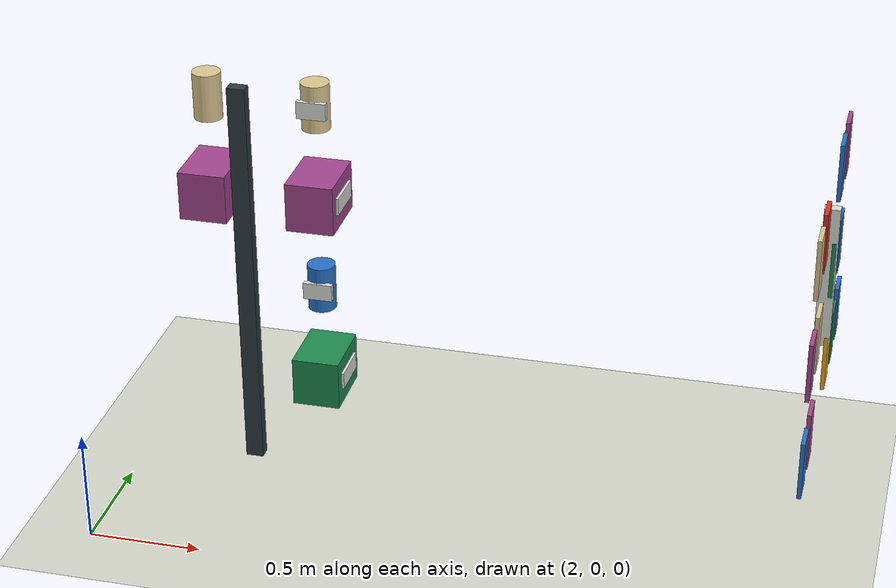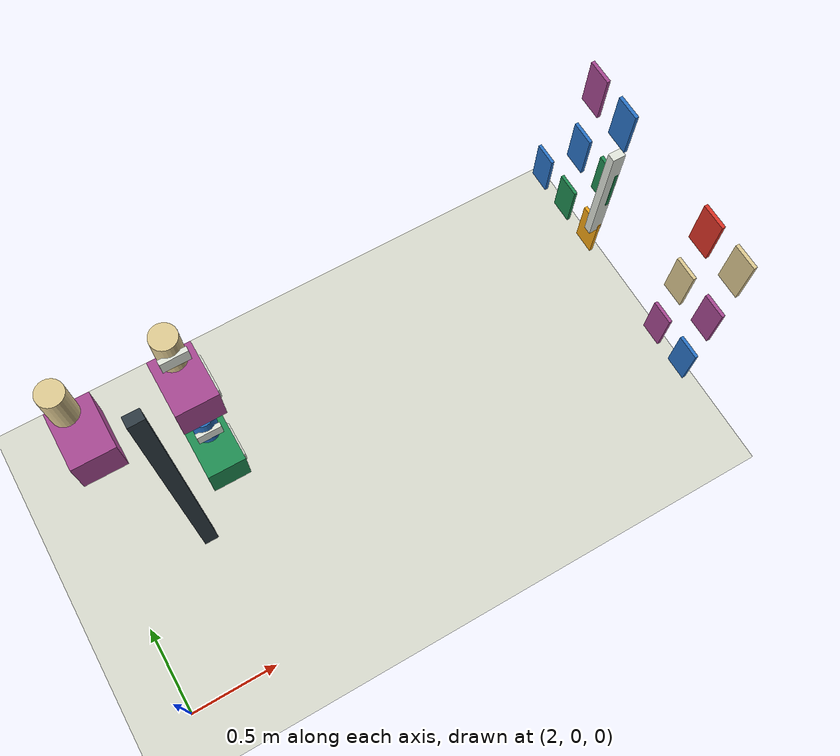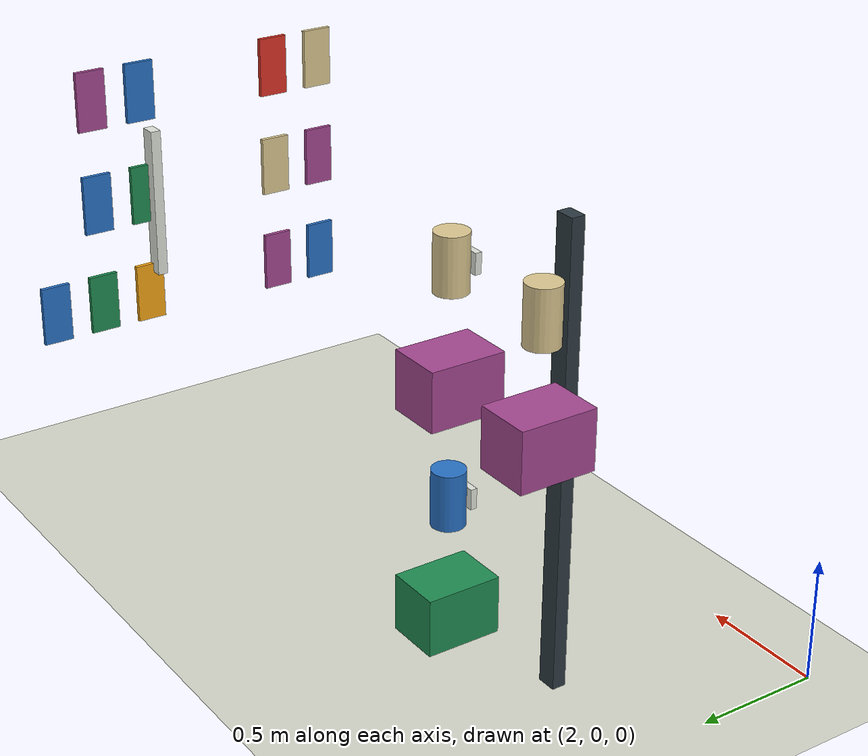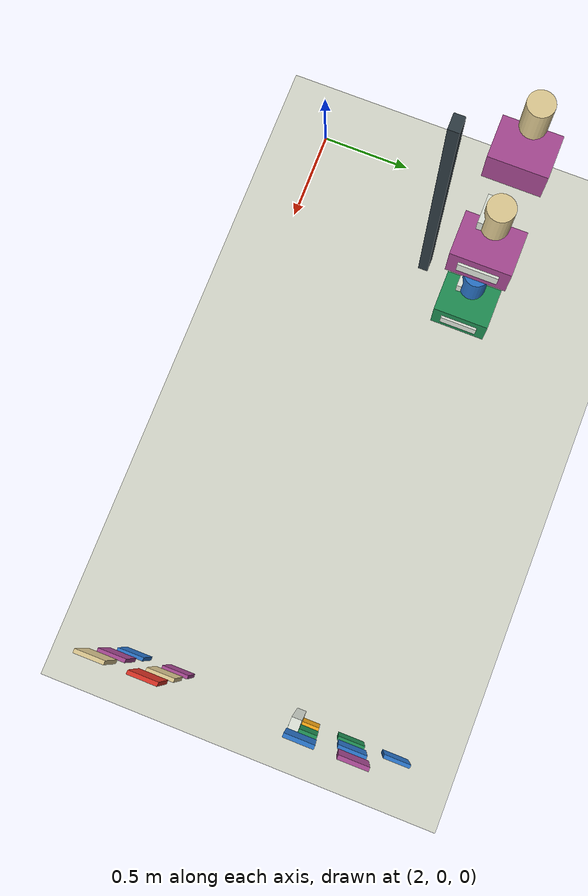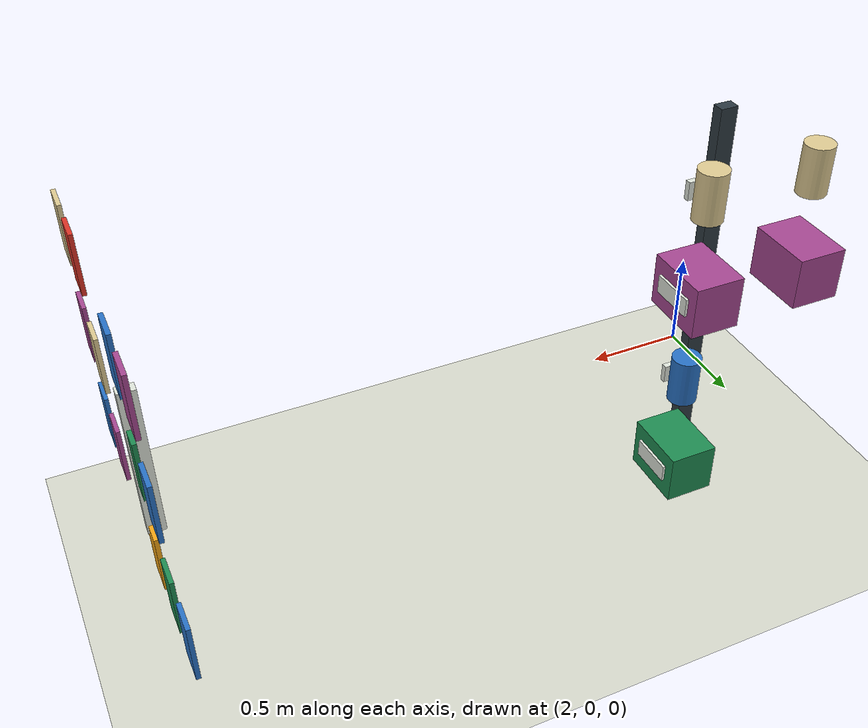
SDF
<sdf version="1.6">
 <world name="convenience_store">
  <model name="ground_plane">
   <static>true</static>
   <link name="ground_link">
    <collision name="ground_collision">
     <geometry><plane><normal>0 0 1</normal><size>100 100</size></plane></geometry>
     <surface><friction><ode><mu>1.0</mu><mu2>1.0</mu2></ode></friction></surface>
    </collision>
    <visual name="ground_visual">
     <geometry><plane><normal>0 0 1</normal><size>100 100</size></plane></geometry>
     <material><ambient>.84 .85 .80 1</ambient><diffuse>.84 .85 .80 1</diffuse></material>
    </visual>
   </link>
  </model>
  <model name="gondola_2_end_0">
   <static>true</static>
   <pose>2.5 0.7999999999999998 0.925 0 0 0</pose>
   <link name="body">
    <collision name="body_collision">
     <geometry><box><size>0.08 0.055 1.85</size></box></geometry>
     <surface><friction><ode><mu>.8</mu><mu2>.8</mu2></ode></friction></surface>
    </collision>
    <visual name="body_visual">
     <geometry><box><size>0.08 0.055 1.85</size></box></geometry>
     <material><ambient>.18 .23 .26 1</ambient><diffuse>.18 .23 .26 1</diffuse></material>
    </visual>
   </link>
  </model>
  <model name="gondola_2_goods_0_1_0">
   <static>true</static>
   <pose>2.75 1.0999999999999999 0.315 0 0 0</pose>
   <link name="body">
    <collision name="body_collision">
     <geometry><box><size>0.22 0.3 0.23</size></box></geometry>
     <surface><friction><ode><mu>.8</mu><mu2>.8</mu2></ode></friction></surface>
    </collision>
    <visual name="body_visual">
     <geometry><box><size>0.22 0.3 0.23</size></box></geometry>
     <material><ambient>.12 .55 .32 1</ambient><diffuse>.12 .55 .32 1</diffuse></material>
    </visual>
   </link>
  </model>
  <model name="gondola_2_goods_0_1_0_label">
   <static>true</static>
   <pose>2.866 1.0999999999999999 0.32 0 0 0</pose>
   <link name="body">
    <visual name="body_visual">
     <geometry><box><size>0.012 0.2 0.08</size></box></geometry>
     <material><ambient>.88 .90 .86 1</ambient><diffuse>.88 .90 .86 1</diffuse></material>
    </visual>
   </link>
  </model>
  <model name="gondola_2_goods_1_1_0">
   <static>true</static>
   <pose>2.75 1.0999999999999999 0.76 0 0 0</pose>
   <link name="body">
    <collision name="body_collision">
     <geometry><cylinder><length>0.22</length><radius>0.065</radius></cylinder></geometry>
     <surface><friction><ode><mu>.8</mu><mu2>.8</mu2></ode></friction></surface>
    </collision>
    <visual name="body_visual">
     <geometry><cylinder><length>0.22</length><radius>0.065</radius></cylinder></geometry>
     <material><ambient>.16 .45 .78 1</ambient><diffuse>.16 .45 .78 1</diffuse></material>
    </visual>
   </link>
  </model>
  <model name="gondola_2_goods_1_1_0_label">
   <static>true</static>
   <pose>2.75 1.0379999999999998 0.76 0 0 0</pose>
   <link name="body">
    <visual name="body_visual">
     <geometry><box><size>0.135 0.025 0.08</size></box></geometry>
     <material><ambient>.88 .90 .86 1</ambient><diffuse>.88 .90 .86 1</diffuse></material>
    </visual>
   </link>
  </model>
  <model name="gondola_2_goods_2_-1_0">
   <static>true</static>
   <pose>2.25 1.0999999999999999 1.215 0 0 0</pose>
   <link name="body">
    <collision name="body_collision">
     <geometry><box><size>0.22 0.3 0.23</size></box></geometry>
     <surface><friction><ode><mu>.8</mu><mu2>.8</mu2></ode></friction></surface>
    </collision>
    <visual name="body_visual">
     <geometry><box><size>0.22 0.3 0.23</size></box></geometry>
     <material><ambient>.65 .28 .57 1</ambient><diffuse>.65 .28 .57 1</diffuse></material>
    </visual>
   </link>
  </model>
  <model name="gondola_2_goods_2_1_0">
   <static>true</static>
   <pose>2.75 1.0999999999999999 1.215 0 0 0</pose>
   <link name="body">
    <collision name="body_collision">
     <geometry><box><size>0.22 0.3 0.23</size></box></geometry>
     <surface><friction><ode><mu>.8</mu><mu2>.8</mu2></ode></friction></surface>
    </collision>
    <visual name="body_visual">
     <geometry><box><size>0.22 0.3 0.23</size></box></geometry>
     <material><ambient>.65 .28 .57 1</ambient><diffuse>.65 .28 .57 1</diffuse></material>
    </visual>
   </link>
  </model>
  <model name="gondola_2_goods_2_1_0_label">
   <static>true</static>
   <pose>2.866 1.0999999999999999 1.2200000000000002 0 0 0</pose>
   <link name="body">
    <visual name="body_visual">
     <geometry><box><size>0.012 0.2 0.08</size></box></geometry>
     <material><ambient>.88 .90 .86 1</ambient><diffuse>.88 .90 .86 1</diffuse></material>
    </visual>
   </link>
  </model>
  <model name="gondola_2_goods_3_-1_0">
   <static>true</static>
   <pose>2.25 1.0999999999999999 1.6600000000000001 0 0 0</pose>
   <link name="body">
    <collision name="body_collision">
     <geometry><cylinder><length>0.22</length><radius>0.065</radius></cylinder></geometry>
     <surface><friction><ode><mu>.8</mu><mu2>.8</mu2></ode></friction></surface>
    </collision>
    <visual name="body_visual">
     <geometry><cylinder><length>0.22</length><radius>0.065</radius></cylinder></geometry>
     <material><ambient>.87 .79 .57 1</ambient><diffuse>.87 .79 .57 1</diffuse></material>
    </visual>
   </link>
  </model>
  <model name="gondola_2_goods_3_1_0">
   <static>true</static>
   <pose>2.75 1.0999999999999999 1.6600000000000001 0 0 0</pose>
   <link name="body">
    <collision name="body_collision">
     <geometry><cylinder><length>0.22</length><radius>0.065</radius></cylinder></geometry>
     <surface><friction><ode><mu>.8</mu><mu2>.8</mu2></ode></friction></surface>
    </collision>
    <visual name="body_visual">
     <geometry><cylinder><length>0.22</length><radius>0.065</radius></cylinder></geometry>
     <material><ambient>.87 .79 .57 1</ambient><diffuse>.87 .79 .57 1</diffuse></material>
    </visual>
   </link>
  </model>
  <model name="gondola_2_goods_3_1_0_label">
   <static>true</static>
   <pose>2.75 1.0379999999999998 1.6600000000000001 0 0 0</pose>
   <link name="body">
    <visual name="body_visual">
     <geometry><box><size>0.135 0.025 0.08</size></box></geometry>
     <material><ambient>.88 .90 .86 1</ambient><diffuse>.88 .90 .86 1</diffuse></material>
    </visual>
   </link>
  </model>
  <model name="fridge_0_drink_0_3">
   <static>true</static>
   <pose>5.05 0.22500000000000003 0.7 0 0 0</pose>
   <link name="body">
    <visual name="body_visual">
     <geometry><box><size>0.018 0.13 0.26</size></box></geometry>
     <material><ambient>.16 .45 .78 1</ambient><diffuse>.16 .45 .78 1</diffuse></material>
    </visual>
   </link>
  </model>
  <model name="fridge_0_drink_0_4">
   <static>true</static>
   <pose>5.05 0.45 0.7 0 0 0</pose>
   <link name="body">
    <visual name="body_visual">
     <geometry><box><size>0.018 0.13 0.26</size></box></geometry>
     <material><ambient>.65 .28 .57 1</ambient><diffuse>.65 .28 .57 1</diffuse></material>
    </visual>
   </link>
  </model>
  <model name="fridge_0_drink_1_3">
   <static>true</static>
   <pose>5.05 0.22500000000000003 1.16 0 0 0</pose>
   <link name="body">
    <visual name="body_visual">
     <geometry><box><size>0.018 0.13 0.26</size></box></geometry>
     <material><ambient>.65 .28 .57 1</ambient><diffuse>.65 .28 .57 1</diffuse></material>
    </visual>
   </link>
  </model>
  <model name="fridge_0_drink_1_4">
   <static>true</static>
   <pose>5.05 0.45 1.16 0 0 0</pose>
   <link name="body">
    <visual name="body_visual">
     <geometry><box><size>0.018 0.13 0.26</size></box></geometry>
     <material><ambient>.87 .79 .57 1</ambient><diffuse>.87 .79 .57 1</diffuse></material>
    </visual>
   </link>
  </model>
  <model name="fridge_0_drink_2_3">
   <static>true</static>
   <pose>5.05 0.22500000000000003 1.62 0 0 0</pose>
   <link name="body">
    <visual name="body_visual">
     <geometry><box><size>0.018 0.13 0.26</size></box></geometry>
     <material><ambient>.87 .79 .57 1</ambient><diffuse>.87 .79 .57 1</diffuse></material>
    </visual>
   </link>
  </model>
  <model name="fridge_0_drink_2_4">
   <static>true</static>
   <pose>5.05 0.45 1.62 0 0 0</pose>
   <link name="body">
    <visual name="body_visual">
     <geometry><box><size>0.018 0.13 0.26</size></box></geometry>
     <material><ambient>.86 .20 .15 1</ambient><diffuse>.86 .20 .15 1</diffuse></material>
    </visual>
   </link>
  </model>
  <model name="fridge_1_handle">
   <static>true</static>
   <pose>5.03 1.06 1.12 0 0 0</pose>
   <link name="body">
    <collision name="body_collision">
     <geometry><box><size>0.07 0.045 0.66</size></box></geometry>
     <surface><friction><ode><mu>.8</mu><mu2>.8</mu2></ode></friction></surface>
    </collision>
    <visual name="body_visual">
     <geometry><box><size>0.07 0.045 0.66</size></box></geometry>
     <material><ambient>.88 .90 .86 1</ambient><diffuse>.88 .90 .86 1</diffuse></material>
    </visual>
   </link>
  </model>
  <model name="fridge_1_drink_0_0">
   <static>true</static>
   <pose>5.05 1.1 0.7 0 0 0</pose>
   <link name="body">
    <visual name="body_visual">
     <geometry><box><size>0.018 0.13 0.26</size></box></geometry>
     <material><ambient>.96 .65 .08 1</ambient><diffuse>.96 .65 .08 1</diffuse></material>
    </visual>
   </link>
  </model>
  <model name="fridge_1_drink_0_1">
   <static>true</static>
   <pose>5.05 1.3250000000000002 0.7 0 0 0</pose>
   <link name="body">
    <visual name="body_visual">
     <geometry><box><size>0.018 0.13 0.26</size></box></geometry>
     <material><ambient>.12 .55 .32 1</ambient><diffuse>.12 .55 .32 1</diffuse></material>
    </visual>
   </link>
  </model>
  <model name="fridge_1_drink_0_2">
   <static>true</static>
   <pose>5.05 1.55 0.7 0 0 0</pose>
   <link name="body">
    <visual name="body_visual">
     <geometry><box><size>0.018 0.13 0.26</size></box></geometry>
     <material><ambient>.16 .45 .78 1</ambient><diffuse>.16 .45 .78 1</diffuse></material>
    </visual>
   </link>
  </model>
  <model name="fridge_1_drink_1_0">
   <static>true</static>
   <pose>5.05 1.1 1.16 0 0 0</pose>
   <link name="body">
    <visual name="body_visual">
     <geometry><box><size>0.018 0.13 0.26</size></box></geometry>
     <material><ambient>.12 .55 .32 1</ambient><diffuse>.12 .55 .32 1</diffuse></material>
    </visual>
   </link>
  </model>
  <model name="fridge_1_drink_1_1">
   <static>true</static>
   <pose>5.05 1.3250000000000002 1.16 0 0 0</pose>
   <link name="body">
    <visual name="body_visual">
     <geometry><box><size>0.018 0.13 0.26</size></box></geometry>
     <material><ambient>.16 .45 .78 1</ambient><diffuse>.16 .45 .78 1</diffuse></material>
    </visual>
   </link>
  </model>
  <model name="fridge_1_drink_2_0">
   <static>true</static>
   <pose>5.05 1.1 1.62 0 0 0</pose>
   <link name="body">
    <visual name="body_visual">
     <geometry><box><size>0.018 0.13 0.26</size></box></geometry>
     <material><ambient>.16 .45 .78 1</ambient><diffuse>.16 .45 .78 1</diffuse></material>
    </visual>
   </link>
  </model>
  <model name="fridge_1_drink_2_1">
   <static>true</static>
   <pose>5.05 1.3250000000000002 1.62 0 0 0</pose>
   <link name="body">
    <visual name="body_visual">
     <geometry><box><size>0.018 0.13 0.26</size></box></geometry>
     <material><ambient>.65 .28 .57 1</ambient><diffuse>.65 .28 .57 1</diffuse></material>
    </visual>
   </link>
  </model>
 </world>
</sdf>
